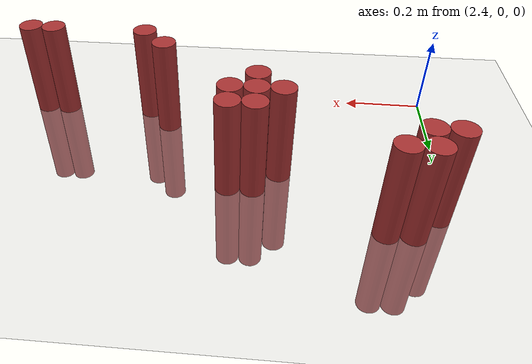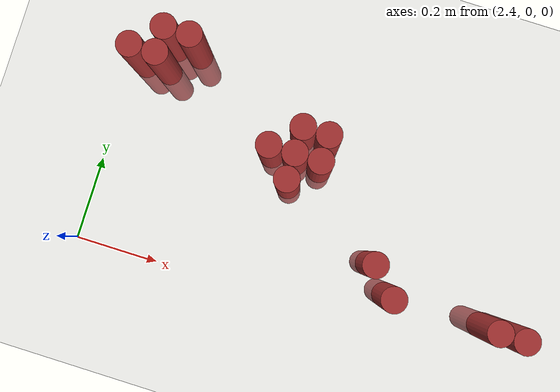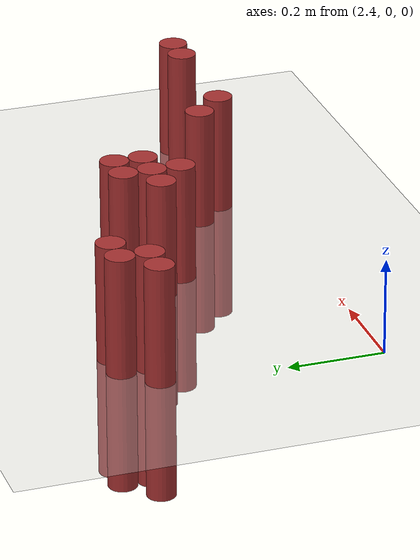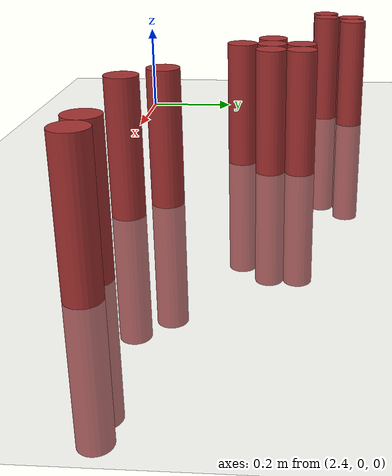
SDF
<sdf version="1.6">
 <world name="default">
  <model name="ground_plane">
   <static>1</static>
   <link name="link">
    <collision name="collision">
     <geometry><plane><normal>0 0 1</normal><size>100 100</size></plane></geometry>
     <surface><friction><ode><mu>100</mu><mu2>50</mu2></ode></friction></surface>
    </collision>
    <visual name="visual">
     <cast_shadows>0</cast_shadows>
     <geometry><plane><normal>0 0 1</normal><size>100 100</size></plane></geometry>
     <material>
      <script><uri>file://media/materials/scripts/gazebo.material</uri><name>Gazebo/Grey</name></script>
     </material>
    </visual>
   </link>
  </model>
  <model name="unit_cylinder_176">
   <static>1</static>
   <pose>2.490000 0.510000 0.000000 0.000000 0.000000 0.000000</pose>
   <link name="link">
    <inertial>
     <mass>1</mass>
     <inertia><ixx>0.145833</ixx><ixy>0</ixy><ixz>0</ixz><iyy>0.145833</iyy><iyz>0</iyz><izz>0.125</izz></inertia>
    </inertial>
    <collision name="collision">
     <geometry><cylinder><radius>0.030000</radius><length>0.5</length></cylinder></geometry>
    </collision>
    <visual name="visual">
     <geometry><cylinder><radius>0.030000</radius><length>0.5</length></cylinder></geometry>
     <material>
      <ambient>0.648000 0.192000 0.192000 1</ambient>
      <diffuse>0.648000 0.192000 0.192000 1</diffuse>
     </material>
     <material>
      <script><name>Gazebo/Grey</name><uri>file://media/materials/scripts/gazebo.material</uri></script>
     </material>
    </visual>
   </link>
  </model>
  <model name="unit_cylinder_177">
   <static>1</static>
   <pose>2.550000 0.510000 0.000000 0.000000 0.000000 0.000000</pose>
   <link name="link">
    <inertial>
     <mass>1</mass>
     <inertia><ixx>0.145833</ixx><ixy>0</ixy><ixz>0</ixz><iyy>0.145833</iyy><iyz>0</iyz><izz>0.125</izz></inertia>
    </inertial>
    <collision name="collision">
     <geometry><cylinder><radius>0.030000</radius><length>0.5</length></cylinder></geometry>
    </collision>
    <visual name="visual">
     <geometry><cylinder><radius>0.030000</radius><length>0.5</length></cylinder></geometry>
     <material>
      <ambient>0.648000 0.192000 0.192000 1</ambient>
      <diffuse>0.648000 0.192000 0.192000 1</diffuse>
     </material>
     <material>
      <script><name>Gazebo/Grey</name><uri>file://media/materials/scripts/gazebo.material</uri></script>
     </material>
    </visual>
   </link>
  </model>
  <model name="unit_cylinder_179">
   <static>1</static>
   <pose>2.430000 0.450000 0.000000 0.000000 0.000000 0.000000</pose>
   <link name="link">
    <inertial>
     <mass>1</mass>
     <inertia><ixx>0.145833</ixx><ixy>0</ixy><ixz>0</ixz><iyy>0.145833</iyy><iyz>0</iyz><izz>0.125</izz></inertia>
    </inertial>
    <collision name="collision">
     <geometry><cylinder><radius>0.030000</radius><length>0.5</length></cylinder></geometry>
    </collision>
    <visual name="visual">
     <geometry><cylinder><radius>0.030000</radius><length>0.5</length></cylinder></geometry>
     <material>
      <ambient>0.648000 0.192000 0.192000 1</ambient>
      <diffuse>0.648000 0.192000 0.192000 1</diffuse>
     </material>
     <material>
      <script><name>Gazebo/Grey</name><uri>file://media/materials/scripts/gazebo.material</uri></script>
     </material>
    </visual>
   </link>
  </model>
  <model name="unit_cylinder_180">
   <static>1</static>
   <pose>2.490000 0.450000 0.000000 0.000000 0.000000 0.000000</pose>
   <link name="link">
    <inertial>
     <mass>1</mass>
     <inertia><ixx>0.145833</ixx><ixy>0</ixy><ixz>0</ixz><iyy>0.145833</iyy><iyz>0</iyz><izz>0.125</izz></inertia>
    </inertial>
    <collision name="collision">
     <geometry><cylinder><radius>0.030000</radius><length>0.5</length></cylinder></geometry>
    </collision>
    <visual name="visual">
     <geometry><cylinder><radius>0.030000</radius><length>0.5</length></cylinder></geometry>
     <material>
      <ambient>0.648000 0.192000 0.192000 1</ambient>
      <diffuse>0.648000 0.192000 0.192000 1</diffuse>
     </material>
     <material>
      <script><name>Gazebo/Grey</name><uri>file://media/materials/scripts/gazebo.material</uri></script>
     </material>
    </visual>
   </link>
  </model>
  <model name="unit_cylinder_181">
   <static>1</static>
   <pose>2.850000 0.390000 0.000000 0.000000 0.000000 0.000000</pose>
   <link name="link">
    <inertial>
     <mass>1</mass>
     <inertia><ixx>0.145833</ixx><ixy>0</ixy><ixz>0</ixz><iyy>0.145833</iyy><iyz>0</iyz><izz>0.125</izz></inertia>
    </inertial>
    <collision name="collision">
     <geometry><cylinder><radius>0.030000</radius><length>0.5</length></cylinder></geometry>
    </collision>
    <visual name="visual">
     <geometry><cylinder><radius>0.030000</radius><length>0.5</length></cylinder></geometry>
     <material>
      <ambient>0.648000 0.192000 0.192000 1</ambient>
      <diffuse>0.648000 0.192000 0.192000 1</diffuse>
     </material>
     <material>
      <script><name>Gazebo/Grey</name><uri>file://media/materials/scripts/gazebo.material</uri></script>
     </material>
    </visual>
   </link>
  </model>
  <model name="unit_cylinder_182">
   <static>1</static>
   <pose>2.910000 0.390000 0.000000 0.000000 0.000000 0.000000</pose>
   <link name="link">
    <inertial>
     <mass>1</mass>
     <inertia><ixx>0.145833</ixx><ixy>0</ixy><ixz>0</ixz><iyy>0.145833</iyy><iyz>0</iyz><izz>0.125</izz></inertia>
    </inertial>
    <collision name="collision">
     <geometry><cylinder><radius>0.030000</radius><length>0.5</length></cylinder></geometry>
    </collision>
    <visual name="visual">
     <geometry><cylinder><radius>0.030000</radius><length>0.5</length></cylinder></geometry>
     <material>
      <ambient>0.648000 0.192000 0.192000 1</ambient>
      <diffuse>0.648000 0.192000 0.192000 1</diffuse>
     </material>
     <material>
      <script><name>Gazebo/Grey</name><uri>file://media/materials/scripts/gazebo.material</uri></script>
     </material>
    </visual>
   </link>
  </model>
  <model name="unit_cylinder_183">
   <static>1</static>
   <pose>2.790000 0.330000 0.000000 0.000000 0.000000 0.000000</pose>
   <link name="link">
    <inertial>
     <mass>1</mass>
     <inertia><ixx>0.145833</ixx><ixy>0</ixy><ixz>0</ixz><iyy>0.145833</iyy><iyz>0</iyz><izz>0.125</izz></inertia>
    </inertial>
    <collision name="collision">
     <geometry><cylinder><radius>0.030000</radius><length>0.5</length></cylinder></geometry>
    </collision>
    <visual name="visual">
     <geometry><cylinder><radius>0.030000</radius><length>0.5</length></cylinder></geometry>
     <material>
      <ambient>0.648000 0.192000 0.192000 1</ambient>
      <diffuse>0.648000 0.192000 0.192000 1</diffuse>
     </material>
     <material>
      <script><name>Gazebo/Grey</name><uri>file://media/materials/scripts/gazebo.material</uri></script>
     </material>
    </visual>
   </link>
  </model>
  <model name="unit_cylinder_184">
   <static>1</static>
   <pose>2.850000 0.330000 0.000000 0.000000 0.000000 0.000000</pose>
   <link name="link">
    <inertial>
     <mass>1</mass>
     <inertia><ixx>0.145833</ixx><ixy>0</ixy><ixz>0</ixz><iyy>0.145833</iyy><iyz>0</iyz><izz>0.125</izz></inertia>
    </inertial>
    <collision name="collision">
     <geometry><cylinder><radius>0.030000</radius><length>0.5</length></cylinder></geometry>
    </collision>
    <visual name="visual">
     <geometry><cylinder><radius>0.030000</radius><length>0.5</length></cylinder></geometry>
     <material>
      <ambient>0.648000 0.192000 0.192000 1</ambient>
      <diffuse>0.648000 0.192000 0.192000 1</diffuse>
     </material>
     <material>
      <script><name>Gazebo/Grey</name><uri>file://media/materials/scripts/gazebo.material</uri></script>
     </material>
    </visual>
   </link>
  </model>
  <model name="unit_cylinder_185">
   <static>1</static>
   <pose>2.910000 0.330000 0.000000 0.000000 0.000000 0.000000</pose>
   <link name="link">
    <inertial>
     <mass>1</mass>
     <inertia><ixx>0.145833</ixx><ixy>0</ixy><ixz>0</ixz><iyy>0.145833</iyy><iyz>0</iyz><izz>0.125</izz></inertia>
    </inertial>
    <collision name="collision">
     <geometry><cylinder><radius>0.030000</radius><length>0.5</length></cylinder></geometry>
    </collision>
    <visual name="visual">
     <geometry><cylinder><radius>0.030000</radius><length>0.5</length></cylinder></geometry>
     <material>
      <ambient>0.648000 0.192000 0.192000 1</ambient>
      <diffuse>0.648000 0.192000 0.192000 1</diffuse>
     </material>
     <material>
      <script><name>Gazebo/Grey</name><uri>file://media/materials/scripts/gazebo.material</uri></script>
     </material>
    </visual>
   </link>
  </model>
  <model name="unit_cylinder_186">
   <static>1</static>
   <pose>2.850000 0.270000 0.000000 0.000000 0.000000 0.000000</pose>
   <link name="link">
    <inertial>
     <mass>1</mass>
     <inertia><ixx>0.145833</ixx><ixy>0</ixy><ixz>0</ixz><iyy>0.145833</iyy><iyz>0</iyz><izz>0.125</izz></inertia>
    </inertial>
    <collision name="collision">
     <geometry><cylinder><radius>0.030000</radius><length>0.5</length></cylinder></geometry>
    </collision>
    <visual name="visual">
     <geometry><cylinder><radius>0.030000</radius><length>0.5</length></cylinder></geometry>
     <material>
      <ambient>0.648000 0.192000 0.192000 1</ambient>
      <diffuse>0.648000 0.192000 0.192000 1</diffuse>
     </material>
     <material>
      <script><name>Gazebo/Grey</name><uri>file://media/materials/scripts/gazebo.material</uri></script>
     </material>
    </visual>
   </link>
  </model>
  <model name="unit_cylinder_187">
   <static>1</static>
   <pose>3.090000 0.150000 0.000000 0.000000 0.000000 0.000000</pose>
   <link name="link">
    <inertial>
     <mass>1</mass>
     <inertia><ixx>0.145833</ixx><ixy>0</ixy><ixz>0</ixz><iyy>0.145833</iyy><iyz>0</iyz><izz>0.125</izz></inertia>
    </inertial>
    <collision name="collision">
     <geometry><cylinder><radius>0.030000</radius><length>0.5</length></cylinder></geometry>
    </collision>
    <visual name="visual">
     <geometry><cylinder><radius>0.030000</radius><length>0.5</length></cylinder></geometry>
     <material>
      <ambient>0.648000 0.192000 0.192000 1</ambient>
      <diffuse>0.648000 0.192000 0.192000 1</diffuse>
     </material>
     <material>
      <script><name>Gazebo/Grey</name><uri>file://media/materials/scripts/gazebo.material</uri></script>
     </material>
    </visual>
   </link>
  </model>
  <model name="unit_cylinder_195">
   <static>1</static>
   <pose>3.150000 0.090000 0.000000 0.000000 0.000000 0.000000</pose>
   <link name="link">
    <inertial>
     <mass>1</mass>
     <inertia><ixx>0.145833</ixx><ixy>0</ixy><ixz>0</ixz><iyy>0.145833</iyy><iyz>0</iyz><izz>0.125</izz></inertia>
    </inertial>
    <collision name="collision">
     <geometry><cylinder><radius>0.030000</radius><length>0.5</length></cylinder></geometry>
    </collision>
    <visual name="visual">
     <geometry><cylinder><radius>0.030000</radius><length>0.5</length></cylinder></geometry>
     <material>
      <ambient>0.648000 0.192000 0.192000 1</ambient>
      <diffuse>0.648000 0.192000 0.192000 1</diffuse>
     </material>
     <material>
      <script><name>Gazebo/Grey</name><uri>file://media/materials/scripts/gazebo.material</uri></script>
     </material>
    </visual>
   </link>
  </model>
  <model name="unit_cylinder_196">
   <static>1</static>
   <pose>3.390000 0.090000 0.000000 0.000000 0.000000 0.000000</pose>
   <link name="link">
    <inertial>
     <mass>1</mass>
     <inertia><ixx>0.145833</ixx><ixy>0</ixy><ixz>0</ixz><iyy>0.145833</iyy><iyz>0</iyz><izz>0.125</izz></inertia>
    </inertial>
    <collision name="collision">
     <geometry><cylinder><radius>0.030000</radius><length>0.5</length></cylinder></geometry>
    </collision>
    <visual name="visual">
     <geometry><cylinder><radius>0.030000</radius><length>0.5</length></cylinder></geometry>
     <material>
      <ambient>0.648000 0.192000 0.192000 1</ambient>
      <diffuse>0.648000 0.192000 0.192000 1</diffuse>
     </material>
     <material>
      <script><name>Gazebo/Grey</name><uri>file://media/materials/scripts/gazebo.material</uri></script>
     </material>
    </visual>
   </link>
  </model>
  <model name="unit_cylinder_197">
   <static>1</static>
   <pose>3.450000 0.090000 0.000000 0.000000 0.000000 0.000000</pose>
   <link name="link">
    <inertial>
     <mass>1</mass>
     <inertia><ixx>0.145833</ixx><ixy>0</ixy><ixz>0</ixz><iyy>0.145833</iyy><iyz>0</iyz><izz>0.125</izz></inertia>
    </inertial>
    <collision name="collision">
     <geometry><cylinder><radius>0.030000</radius><length>0.5</length></cylinder></geometry>
    </collision>
    <visual name="visual">
     <geometry><cylinder><radius>0.030000</radius><length>0.5</length></cylinder></geometry>
     <material>
      <ambient>0.648000 0.192000 0.192000 1</ambient>
      <diffuse>0.648000 0.192000 0.192000 1</diffuse>
     </material>
     <material>
      <script><name>Gazebo/Grey</name><uri>file://media/materials/scripts/gazebo.material</uri></script>
     </material>
    </visual>
   </link>
  </model>
 </world>
</sdf>
